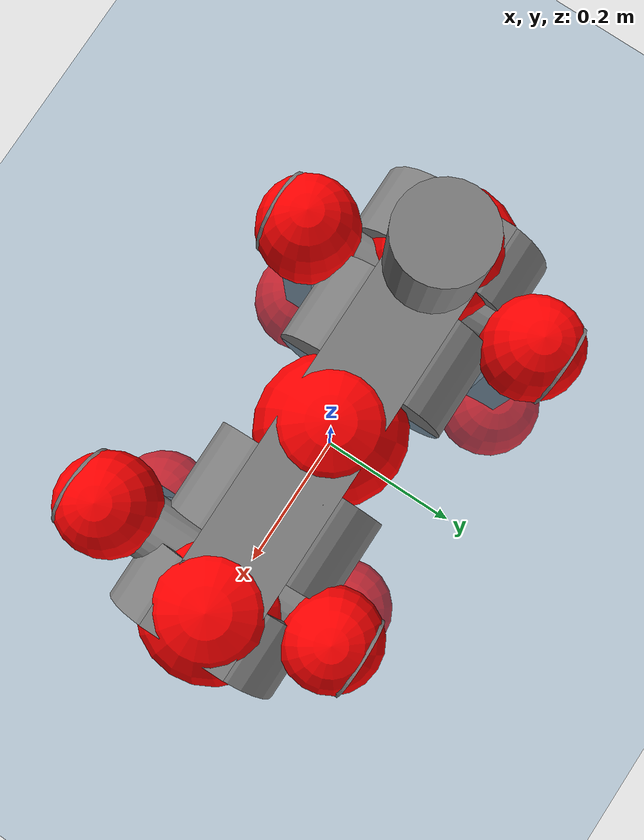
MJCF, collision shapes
<mujoco model="anymal_c">
  <compiler angle="radian" assetdir="assets" balanceinertia="true" inertiafromgeom="false"/>

  <option timestep="0.005" density="1.2" viscosity="2e-05"/>

  <size nkey="1"/>

  <visual>
    <quality shadowsize="8192"/>
    <map shadowclip="0.5"/>
  </visual>

  <default>
    <default class="/">
      <material specular="0" shininess="0.25"/>
      <geom contype="0" conaffinity="0" group="1" solref="-1000 -80"/>
      <site size="0.01 0.005 0.005" group="5"/>
      <general forcelimited="true" forcerange="-80 80" biastype="affine" gainprm="80" biasprm="0 -80 -2"/>
      <default class="anymal_c">
        <joint armature="0.01" damping="0.01" frictionloss="0.1"/>
        <default class="visual">
          <geom type="mesh" group="2"/>
          <default class="visual_zflip"/>
        </default>
        <default class="collision">
          <geom type="cylinder" group="3"/>
          <default class="foot">
            <geom size="0.03 0 0" type="sphere" condim="6" priority="1" friction="0.8 0.02 0.01" solimp="0.015 1 0.03"/>
          </default>
        </default>
      </default>
      <default class="reward_collision_sphere">
        <geom group="5" rgba="1 0 0 1"/>
      </default>
    </default>
  </default>

  <asset>
    <texture type="skybox" colorspace="auto" name="//unnamed_texture_0" builtin="gradient" rgb1="0.95 0.95 0.95" rgb2="0.95 0.95 0.95" width="100" height="600"/>
    <texture type="2d" colorspace="auto" name="texplane" builtin="checker" rgb1="0.345 0.575 0.748" rgb2="0.345 0.575 0.748" markrgb="1 1 1" width="512" height="512"/>
    <texture type="2d" colorspace="linear" name="base" file="base.png"/>
    <texture type="2d" colorspace="linear" name="top_shell" file="top_shell.png"/>
    <texture type="2d" colorspace="linear" name="bottom_shell" file="bottom_shell.png"/>
    <texture type="2d" colorspace="linear" name="remote" file="remote.png"/>
    <texture type="2d" colorspace="linear" name="hatch" file="hatch.png"/>
    <texture type="2d" colorspace="linear" name="handle" file="handle.png"/>
    <texture type="2d" colorspace="linear" name="face" file="face.png"/>
    <texture type="2d" colorspace="linear" name="battery" file="battery.png"/>
    <texture type="2d" colorspace="linear" name="lidar_cage" file="lidar_cage.png"/>
    <texture type="2d" colorspace="linear" name="depth_camera" file="depth_camera.png"/>
    <texture type="2d" colorspace="linear" name="wide_angle_camera" file="wide_angle_camera.png"/>
    <texture type="2d" colorspace="linear" name="lidar" file="lidar.png"/>
    <texture type="2d" colorspace="linear" name="drive" file="drive.png"/>
    <texture type="2d" colorspace="linear" name="hip_l" file="hip_l.png"/>
    <texture type="2d" colorspace="linear" name="shank_l" file="shank_l.png"/>
    <texture type="2d" colorspace="linear" name="foot" file="foot.png"/>
    <texture type="2d" colorspace="linear" name="thigh" file="thigh.png"/>
    <texture type="2d" colorspace="linear" name="shank_r" file="shank_r.png"/>
    <texture type="2d" colorspace="linear" name="hip_r" file="hip_r.png"/>
    <material name="MatPlane" class="/" texture="texplane" texuniform="true" texrepeat="2 2" specular="0.9" shininess="0.5"/>
    <material name="black_plastic" class="/" rgba="0.007 0.007 0.007 1"/>
    <material name="green" class="/" rgba="0.052 0.178 0.033 1"/>
    <material name="red" class="/" rgba="0.178 0.006 0.005 1"/>
    <material name="yellow" class="/" rgba="0.178 0.119 0.006 1"/>
    <material name="lwl" class="/" rgba="0.8 0.8 0.8 1"/>
    <material name="base" class="/" texture="base"/>
    <material name="top_shell" class="/" texture="top_shell"/>
    <material name="bottom_shell" class="/" texture="bottom_shell"/>
    <material name="hip_l" class="/" texture="hip_l"/>
    <material name="thigh" class="/" texture="thigh"/>
    <material name="shank_l" class="/" texture="shank_l"/>
    <material name="foot" class="/" texture="foot"/>
    <material name="hip_r" class="/" texture="hip_r"/>
    <material name="shank" class="/" texture="shank_r"/>
    <material name="hatch" class="/" texture="hatch"/>
    <material name="remote" class="/" texture="remote"/>
    <material name="handle" class="/" texture="handle"/>
    <material name="face" class="/" texture="face"/>
    <material name="depth_camera" class="/" texture="depth_camera"/>
    <material name="wide_angle_camera" class="/" texture="wide_angle_camera"/>
    <material name="battery" class="/" texture="battery"/>
    <material name="lidar_cage" class="/" texture="lidar_cage"/>
    <material name="lidar" class="/" texture="lidar"/>
    <material name="drive" class="/" texture="drive"/>
    <mesh name="base_0" class="/" file="base_0.obj"/>
    <mesh name="base_1" class="/" file="base_1.obj"/>
    <mesh name="base_2" class="/" file="base_2.obj"/>
    <mesh name="base_3" class="/" file="base_3.obj"/>
    <mesh name="base_4" class="/" file="base_4.obj"/>
    <mesh name="base_5" class="/" file="base_5.obj"/>
    <mesh name="top_shell" class="/" file="top_shell.obj"/>
    <mesh name="bottom_shell" class="/" file="bottom_shell.obj"/>
    <mesh name="remote" class="/" file="remote.obj"/>
    <mesh name="handle" class="/" file="handle.obj"/>
    <mesh name="face" class="/" file="face.obj"/>
    <mesh name="wide_angle_camera" class="/" file="wide_angle_camera.obj"/>
    <mesh name="depth_camera" class="/" file="depth_camera.obj"/>
    <mesh name="battery" class="/" file="battery.obj"/>
    <mesh name="lidar_cage" class="/" file="lidar_cage.obj"/>
    <mesh name="lidar" class="/" file="lidar.obj"/>
    <mesh name="drive" class="/" file="drive.obj"/>
    <mesh name="hip_l" class="/" file="hip_l.obj"/>
    <mesh name="thigh" class="/" file="thigh.obj"/>
    <mesh name="shank_l" class="/" file="shank_l.obj"/>
    <mesh name="foot" class="/" file="foot.obj"/>
    <mesh name="hip_r" class="/" file="hip_r.obj"/>
    <mesh name="hatch" class="/" file="hatch.obj"/>
    <mesh name="shank_r" class="/" file="shank_r.obj"/>
  </asset>

  <worldbody>
    <geom name="floor" class="/" size="100 100 0.125" type="plane" group="0" material="MatPlane"/>
    <light name="toplight_shadow" class="/" pos="0 0 5" dir="0.0990148 0.0990148 -0.990148" type="directional" ambient="0.04 0.04 0.04" diffuse="0.55 0.55 0.55" specular="0.12 0.12 0.12"/>
    <light name="toplight_fill" class="/" pos="0 0 5" dir="0.0990148 0.0990148 -0.990148" type="directional" castshadow="false" ambient="0.04 0.04 0.04" diffuse="0.3 0.3 0.3" specular="0.08 0.08 0.08"/>
    <body name="trunk" childclass="anymal_c" pos="-0.0155554 -0.00880286 0.00383017" quat="0.999994 -0.000170407 0.00175678 0.00285426">
      <inertial pos="0.000186399 0.0038109 0.0726016" quat="0.457903 0.508755 0.499227 0.531287" mass="16.0668" diaginertia="0.0521932 0.0828841 1.3884"/>
      <joint name="//unnamed_joint_0" type="free" armature="0" damping="0" frictionloss="0"/>
      <geom name="//unnamed_geom_1" class="visual" material="green" mesh="base_0"/>
      <geom name="//unnamed_geom_2" class="visual" material="yellow" mesh="base_1"/>
      <geom name="//unnamed_geom_3" class="visual" material="red" mesh="base_2"/>
      <geom name="//unnamed_geom_4" class="visual" material="black_plastic" mesh="base_3"/>
      <geom name="//unnamed_geom_5" class="visual" material="lwl" mesh="base_4"/>
      <geom name="//unnamed_geom_6" class="visual" material="base" mesh="base_5"/>
      <geom name="trunk_1" class="collision" size="0.27443 0.0662416 0.0851678" type="box"/>
      <geom name="trunk_2" class="collision" size="0.0851678 0.0686074" pos="0.143241 0.050231 0" quat="0.707107 0 0.707107 0"/>
      <geom name="trunk_3" class="collision" size="0.0851678 0.0686074" pos="-0.143241 0.050231 0" quat="0.707107 0 0.707107 0"/>
      <geom name="trunk_4" class="collision" size="0.0851678 0.0686074" pos="0.143241 -0.050231 0" quat="0.707107 0 0.707107 0"/>
      <geom name="trunk_5" class="collision" size="0.0851678 0.0686074" pos="-0.143241 -0.050231 0" quat="0.707107 0 0.707107 0"/>
      <geom name="//unnamed_geom_12" class="visual" material="top_shell" mesh="top_shell"/>
      <geom name="//unnamed_geom_13" class="visual" material="bottom_shell" mesh="bottom_shell"/>
      <geom name="//unnamed_geom_14" class="visual" material="remote" mesh="remote"/>
      <geom name="//unnamed_geom_15" class="visual" material="handle" mesh="handle"/>
      <geom name="//unnamed_geom_16" class="visual" pos="0.272981 0 0" quat="1 0 0 0" material="face" mesh="face"/>
      <geom name="trunk_6" class="collision" size="0.052047 0.0662416 0.0851678" pos="0.309203 0 0" type="box"/>
      <geom name="//unnamed_geom_18" class="collision" size="0.0851678 0.052047" pos="0.309203 0.050231 0" quat="0.707107 0 0.707107 0"/>
      <geom name="//unnamed_geom_19" class="collision" size="0.0851678 0.052047" pos="0.309203 -0.050231 0" quat="0.707107 0 0.707107 0"/>
      <geom name="//unnamed_geom_20" class="visual" pos="0.304066 0 -0.0488244" quat="0.965926 0 0.258819 0" material="depth_camera" mesh="depth_camera"/>
      <geom name="//unnamed_geom_21" class="visual" pos="0.337851 0 0.0218975" material="wide_angle_camera" mesh="wide_angle_camera"/>
      <geom name="//unnamed_geom_22" class="visual_zflip" pos="-0.272981 0 0" quat="0 0 0 1" material="face" mesh="face"/>
      <geom name="trunk_7" class="collision" size="0.052047 0.0662416 0.0851678" pos="-0.309203 0 0" quat="0 0 0 1" type="box"/>
      <geom name="//unnamed_geom_24" class="collision" size="0.0851678 0.052047" pos="-0.309203 -0.050231 0" quat="0 -0.707107 0 0.707107"/>
      <geom name="//unnamed_geom_25" class="collision" size="0.0851678 0.052047" pos="-0.309203 0.050231 0" quat="0 -0.707107 0 0.707107"/>
      <geom name="//unnamed_geom_26" class="visual" pos="-0.304066 0 -0.0488244" quat="0 -0.258819 0 0.965926" material="depth_camera" mesh="depth_camera"/>
      <geom name="//unnamed_geom_27" class="visual_zflip" pos="-0.337851 0 0.0218975" quat="0 0 0 1" material="wide_angle_camera" mesh="wide_angle_camera"/>
      <geom name="//unnamed_geom_28" class="visual" material="battery" mesh="battery"/>
      <geom name="//unnamed_geom_29" class="visual" pos="0 0.0556743 0.0363814" quat="0.683013 -0.183013 0.183013 0.683013" material="depth_camera" mesh="depth_camera"/>
      <geom name="//unnamed_geom_30" class="visual" pos="0 -0.0556743 0.0363814" quat="0.683013 0.183013 0.183013 -0.683013" material="depth_camera" mesh="depth_camera"/>
      <geom name="//unnamed_geom_31" class="visual" pos="-0.239723 0 0.107513" quat="1 0 0 0" material="lidar_cage" mesh="lidar_cage"/>
      <geom name="trunk_8" class="collision" size="0.0662416 0.0567785" pos="-0.239723 0 0.195279"/>
      <geom name="//unnamed_geom_33" class="visual" pos="-0.239723 2.3182e-05 0.208005" quat="0.707107 0 0 -0.707107" material="lidar" mesh="lidar"/>
      <geom name="//unnamed_geom_34" class="visual" pos="0.197508 0.0748936 -1.28544e-08" quat="0.258819 0.965926 0 0" material="drive" mesh="drive"/>
      <geom name="//unnamed_geom_35" class="visual" pos="0.197508 -0.0748936 1.28544e-08" quat="0.258819 -0.965926 0 0" material="drive" mesh="drive"/>
      <geom name="//unnamed_geom_36" class="visual" pos="-0.197508 0.0748936 1.28544e-08" quat="0 0 0.965926 -0.258819" material="drive" mesh="drive"/>
      <geom name="//unnamed_geom_37" class="visual" pos="-0.197508 -0.0748936 -1.28544e-08" quat="0 0 -0.965926 -0.258819" material="drive" mesh="drive"/>
      <geom name="//unnamed_geom_38" class="visual" pos="0.0763952 0 0.106782" quat="1 0 0 0" material="hatch" mesh="hatch"/>
      <geom name="//unnamed_geom_39" class="reward_collision_sphere" size="0.113557"/>
      <geom name="//unnamed_geom_40" class="reward_collision_sphere" size="0.113557" pos="0.296361 0 0"/>
      <geom name="//unnamed_geom_41" class="reward_collision_sphere" size="0.113557" pos="-0.296361 0 0"/>
      <site name="imu" pos="0.127938 0.0312126 0.153039" size="0.00946309"/>
      <camera name="track" pos="0 -1.43517 0" quat="0.707107 0.707107 0 0" mode="trackcom"/>
      <camera name="ego_camera" pos="0.296361 0 -0.0585105" quat="-0.5 -0.5 0.5 0.5"/>
      <body name="LF_HIP" pos="0.193933 0.073493 0.0111834" quat="0.25398 0.967195 0.000120589 0.00535336">
        <inertial pos="0.0538092 -0.00195888 -0.0101591" quat="-0.122705 0.709005 -0.140657 0.680052" mass="2.63842" diaginertia="0.000811195 0.00112843 0.0242309"/>
        <joint name="LF_HAA" pos="0 0 0" axis="0.995752 -0.010051 -0.091521" stiffness="0.0785155" range="-0.641675 0.504173" armature="0.0169411" damping="0" frictionloss="0.0470004"/>
        <geom name="//unnamed_geom_42" class="visual" pos="0 -0.000756164 0.000124199" quat="0.258819 -0.965926 0 0" material="hip_l" mesh="hip_l"/>
        <geom name="//unnamed_geom_43" class="visual" pos="0.0394489 -0.0488424 -0.0337109" quat="0.183013 -0.683013 0.683013 0.183013" material="drive" mesh="drive"/>
        <geom name="//unnamed_geom_44" class="collision" size="0.0473154 0.0662416" pos="0.0394489 -0.00858218 -0.0101004" quat="-0.353553 -0.612372 0.612372 -0.353553"/>
        <body name="LF_THIGH" pos="0.0514101 -0.051212 -0.050599" quat="0.182066 -0.684468 0.680796 0.186745">
          <inertial pos="0.0239848 -0.000704566 -0.341804" quat="0.996661 -0.0179041 -0.0350708 0.0715334" mass="2.74777" diaginertia="0.00398781 0.0062405 0.0319327"/>
          <joint name="LF_HFE" pos="0 0 0" axis="0.998604 0.0451567 0.027413" stiffness="0.0583317" range="-3.32516 3.14108" armature="0.00191878" damping="0.0574038" frictionloss="0.147278"/>
          <geom name="//unnamed_geom_45" class="visual" pos="-0.001174 -1.84994e-06 0" quat="0.707107 0 0 -0.707107" material="thigh" mesh="thigh"/>
          <geom name="//unnamed_geom_46" class="collision" size="0.0615101 0.0378523" pos="0.0263432 0 0" quat="0.5 0.5 -0.5 -0.5"/>
          <geom name="//unnamed_geom_47" class="collision" size="0.0354866 0.0283893 0.133727" pos="0.0197574 0 -0.206709" quat="0.707107 0 0 -0.707107" type="box"/>
          <geom name="//unnamed_geom_48" class="visual" pos="0.0660555 0 -0.416887" quat="1 0 0 0" material="drive" mesh="drive"/>
          <geom name="//unnamed_geom_49" class="collision" size="0.0473154 0.0662416" pos="0.0199549 0 -0.416887" quat="0.707107 0 0.707107 0"/>
          <geom name="//unnamed_geom_50" class="reward_collision_sphere" size="0.0757047" pos="0.0164645 0 0"/>
          <body name="LF_SHANK" pos="0.0632957 0.0179793 -0.413681" quat="0.999979 0.00429223 -0.00347659 -0.0033035">
            <inertial pos="-0.0063378 -0.037393 -0.116782" quat="0.985032 -0.160526 -0.0626276 0.00468238" mass="0.365617" diaginertia="0.00126021 0.00147774 0.00759831"/>
            <joint name="LF_KFE" pos="0 0 0" axis="0.999177 0.0111364 -0.0389961" range="-3.18044 3.24732" armature="0.00790084" damping="0.0663978" frictionloss="0.0742821"/>
            <geom name="//unnamed_geom_51" class="visual" pos="-0.000382814 -0.00204119 0" quat="0.707107 0 0 -0.707107" material="shank_l" mesh="shank_l"/>
            <geom name="LF_kfe_act" class="collision" size="0.0567785 0.0189262" pos="0.0131716 0 0" quat="0.5 0.5 -0.5 -0.5"/>
            <geom name="//unnamed_geom_53" class="collision" size="0.0544118 0.0319379 0.0179799" pos="0.0131716 -0.0412605 0" quat="0.5 0.5 -0.5 -0.5" type="box"/>
            <geom name="//unnamed_geom_54" class="visual" pos="0.00859455 -0.0637694 -0.494369" quat="0.382683 0 0 -0.92388" material="foot" mesh="foot"/>
            <geom name="LF_calf" class="collision" size="0.0165604 0.133668" pos="0.00859446 -0.0631117 -0.247185" quat="0.707107 0 0 -0.707107"/>
            <geom name="LF_foot" class="foot" size="0.014699" pos="0.00859446 -0.0631117 -0.461457" quat="0.707107 0 0 -0.707107"/>
            <geom name="//unnamed_geom_57" class="reward_collision_sphere" size="0.0946309" pos="-0.032929 0 0"/>
            <geom name="//unnamed_geom_58" class="reward_collision_sphere" size="0.0473154" pos="0.00859446 -0.0631117 -0.461457"/>
            <site name="LF_foot" class="foot" pos="0.00859446 -0.0631117 -0.461457" quat="0.707107 0 0 -0.707107" size="0.00946309"/>
          </body>
        </body>
      </body>
      <body name="RF_HIP" pos="0.215216 -0.0918694 0.0143077" quat="0.25803 -0.966136 4.69528e-05 -0.00147649">
        <inertial pos="0.0200636 0.00382075 0.00394892" quat="0.150588 0.715782 0.134971 0.668403" mass="1.74181" diaginertia="0.000598964 0.000852245 0.0176114"/>
        <joint name="RF_HAA" pos="0 0 0" axis="0.997065 0.0657002 -0.03931" range="-0.163866 0.622634" armature="0.0094436" damping="0" frictionloss="0.163725"/>
        <geom name="//unnamed_geom_59" class="visual" pos="0 0.000756158 0.000124199" quat="0.258819 0.965926 0 0" material="hip_r" mesh="hip_r"/>
        <geom name="//unnamed_geom_60" class="visual" pos="0.0394489 0.0488424 -0.0337109" quat="0.183013 0.683013 0.683013 -0.183013" material="drive" mesh="drive"/>
        <geom name="//unnamed_geom_61" class="collision" size="0.0473154 0.0662416" pos="0.0394489 0.00858218 -0.0101004" quat="-0.353553 0.612372 0.612372 0.353553"/>
        <body name="RF_THIGH" pos="0.040824 0.0596291 -0.0725932" quat="0.183566 0.683156 0.682896 -0.182358">
          <inertial pos="0.0306765 -0.0184534 -0.36653" quat="0.992662 -0.0074459 -0.0791876 0.0910863" mass="2.32583" diaginertia="0.00365552 0.00477089 0.0251927"/>
          <joint name="RF_HFE" pos="0 0 0" axis="0.999163 -0.0350844 -0.0210437" range="-3.04388 2.93513" armature="0.013277" damping="0.0682727" frictionloss="0.0665155"/>
          <geom name="//unnamed_geom_62" class="visual" pos="-0.001174 -1.84994e-06 0" quat="0.707107 0 0 -0.707107" material="thigh" mesh="thigh"/>
          <geom name="//unnamed_geom_63" class="collision" size="0.0615101 0.0378523" pos="0.0263432 0 0" quat="0.5 0.5 0.5 0.5"/>
          <geom name="//unnamed_geom_64" class="collision" size="0.0354866 0.0283893 0.133727" pos="0.0197574 0 -0.206709" quat="0.707107 0 0 0.707107" type="box"/>
          <geom name="//unnamed_geom_65" class="visual" pos="0.0660555 0 -0.416887" quat="1 0 0 0" material="drive" mesh="drive"/>
          <geom name="//unnamed_geom_66" class="collision" size="0.0473154 0.0662416" pos="0.0199549 0 -0.416887" quat="0.707107 0 0.707107 0"/>
          <geom name="//unnamed_geom_67" class="reward_collision_sphere" size="0.0757047" pos="0.0164645 0 0"/>
          <body name="RF_SHANK" pos="0.0670031 -0.00742889 -0.431668" quat="0.999962 -0.00176694 8.18521e-05 0.00852898">
            <inertial pos="-0.0150106 0.0560528 -0.132571" quat="0.994482 0.104573 -0.00835978 0.000110793" mass="0.629006" diaginertia="0.00116886 0.00152342 0.00624805"/>
            <joint name="RF_KFE" pos="0 0 0" axis="0.99928 -0.00973754 -0.0366757" range="-2.80808 3.21415" armature="0.00681201" damping="0" frictionloss="0.0221216"/>
            <geom name="//unnamed_geom_68" class="visual" pos="-0.000382812 0.00204118 0" quat="0.707107 0 0 0.707107" material="shank" mesh="shank_r"/>
            <geom name="RF_kfe_act" class="collision" size="0.0567785 0.0189262" pos="0.0131716 0 0" quat="0.5 0.5 0.5 0.5"/>
            <geom name="//unnamed_geom_70" class="collision" size="0.0544118 0.0319379 0.0179799" pos="0.0131716 0.0412605 0" quat="0.5 0.5 0.5 0.5" type="box"/>
            <geom name="//unnamed_geom_71" class="visual" pos="0.00859437 0.0637694 -0.494369" quat="0.382683 0 0 0.92388" material="foot" mesh="foot"/>
            <geom name="RF_calf" class="collision" size="0.0165604 0.133668" pos="0.00859446 0.0631117 -0.247185" quat="0.707107 0 0 0.707107"/>
            <geom name="RF_foot" class="foot" size="0.0291633" pos="0.00859446 0.0631117 -0.461457" quat="0.707107 0 0 0.707107"/>
            <geom name="//unnamed_geom_74" class="reward_collision_sphere" size="0.0946309" pos="-0.032929 0 0"/>
            <geom name="//unnamed_geom_75" class="reward_collision_sphere" size="0.0473154" pos="0.00859446 0.0631117 -0.461457"/>
            <site name="RF_foot" class="foot" pos="0.00859446 0.0631117 -0.461457" quat="0.707107 0 0 0.707107" size="0.00946309"/>
          </body>
        </body>
      </body>
      <body name="LH_HIP" pos="-0.21638 0.0899025 0.00583618" quat="0.00106841 -0.00291781 0.966444 -0.256859">
        <inertial pos="0.0206813 0.0292501 -0.013303" quat="0.198595 0.684862 0.089807 0.695312" mass="2.70134" diaginertia="0.00080486 0.000944809 0.0266308"/>
        <joint name="LH_HAA" pos="0 0 0" axis="0.998871 0.00993 -0.046448" range="-0.743002 0.545641" armature="0.00962748" damping="0.0109649" frictionloss="0.133408"/>
        <geom name="//unnamed_geom_76" class="visual" pos="0 0.000756158 0.000124199" quat="-0.258819 -0.965926 0 0" material="hip_r" mesh="hip_r"/>
        <geom name="//unnamed_geom_77" class="visual" pos="0.0394489 0.0488424 -0.0337109" quat="0.183013 0.683013 0.683013 -0.183013" material="drive" mesh="drive"/>
        <geom name="//unnamed_geom_78" class="collision" size="0.0473154 0.0662416" pos="0.0394489 0.00858218 -0.0101004" quat="-0.353553 0.612372 0.612372 0.353553"/>
        <body name="LH_THIGH" pos="0.0286498 0.0433962 -0.0616733" quat="0.17887 0.683124 0.683834 -0.183626">
          <inertial pos="0.0140296 -0.0170061 -0.362811" quat="0.983569 0.0213881 -0.102431 0.147116" mass="2.00867" diaginertia="0.00362575 0.00454955 0.0287352"/>
          <joint name="LH_HFE" pos="0 0 0" axis="0.996818 0.0353224 -0.071455" stiffness="0.0650961" range="-3.39268 2.90331" armature="0.0022134" damping="0" frictionloss="0.0251068"/>
          <geom name="//unnamed_geom_79" class="visual" pos="-0.001174 -1.84994e-06 0" quat="0.707107 0 0 -0.707107" material="thigh" mesh="thigh"/>
          <geom name="//unnamed_geom_80" class="collision" size="0.0615101 0.0378523" pos="0.0263432 0 0" quat="0.5 0.5 -0.5 -0.5"/>
          <geom name="//unnamed_geom_81" class="collision" size="0.0354866 0.0283893 0.133727" pos="0.0197574 0 -0.206709" quat="0.707107 0 0 -0.707107" type="box"/>
          <geom name="//unnamed_geom_82" class="visual" pos="0.0660555 0 -0.416887" quat="1 0 0 0" material="drive" mesh="drive"/>
          <geom name="//unnamed_geom_83" class="collision" size="0.0473154 0.0662416" pos="0.0199549 0 -0.416887" quat="0.707107 0 0.707107 0"/>
          <geom name="//unnamed_geom_84" class="reward_collision_sphere" size="0.0757047" pos="0.0164645 0 0"/>
          <body name="LH_SHANK" pos="0.077787 -0.014295 -0.399176" quat="0.99996 -0.00744135 -0.00334682 -0.00368826">
            <inertial pos="-0.000761285 0.0438934 -0.136715" quat="0.997747 0.0655775 0.00942821 0.0105203" mass="0.585499" diaginertia="0.00127384 0.00192777 0.007088"/>
            <joint name="LH_KFE" pos="0 0 0" axis="0.99903 -0.0424865 -0.0115429" stiffness="0.0487624" range="-3.27456 3.37846" armature="0.0065177" damping="0.00017519" frictionloss="0.15996"/>
            <geom name="//unnamed_geom_85" class="visual" pos="-0.000382812 0.00204118 0" quat="-0.707107 0 0 -0.707107" material="shank" mesh="shank_r"/>
            <geom name="LH_kfe_act" class="collision" size="0.0567785 0.0189262" pos="0.0131716 0 0" quat="0.5 0.5 -0.5 -0.5"/>
            <geom name="//unnamed_geom_87" class="collision" size="0.0544118 0.0319379 0.0179799" pos="0.0131716 0.0412605 0" quat="0.5 0.5 -0.5 -0.5" type="box"/>
            <geom name="//unnamed_geom_88" class="visual" pos="0.00859437 0.0637694 -0.494369" quat="-0.382683 0 0 -0.92388" material="foot" mesh="foot"/>
            <geom name="LH_calf" class="collision" size="0.0165604 0.133668" pos="0.00859446 0.0631117 -0.247185" quat="0.707107 0 0 -0.707107"/>
            <geom name="LH_foot" class="foot" size="0.0435992" pos="0.00859446 0.0631117 -0.461457" quat="0.707107 0 0 -0.707107"/>
            <geom name="//unnamed_geom_91" class="reward_collision_sphere" size="0.0946309" pos="-0.032929 0 0"/>
            <geom name="//unnamed_geom_92" class="reward_collision_sphere" size="0.0473154" pos="0.00859446 0.0631117 -0.461457"/>
            <site name="LH_foot" class="foot" pos="0.00859446 0.0631117 -0.461457" quat="0.707107 0 0 -0.707107" size="0.00946309"/>
          </body>
        </body>
      </body>
      <body name="RH_HIP" pos="-0.180751 -0.0838425 0.00463128" quat="0.00273943 0.000259754 -0.96672 -0.255822">
        <inertial pos="0.024234 -0.0215793 -0.0135176" quat="-0.198319 0.691392 -0.177503 0.671669" mass="2.52154" diaginertia="0.000669554 0.000851269 0.020157"/>
        <joint name="RH_HAA" pos="0 0 0" axis="0.996256 0.0516026 0.069359" stiffness="0.0274398" range="-0.734353 0.331736" armature="0.0140301" damping="0" frictionloss="0.0826871"/>
        <geom name="//unnamed_geom_93" class="visual" pos="0 -0.000756164 0.000124199" quat="-0.258819 0.965926 0 0" material="hip_l" mesh="hip_l"/>
        <geom name="//unnamed_geom_94" class="visual" pos="0.0394489 -0.0488424 -0.0337109" quat="-0.183013 0.683013 -0.683013 -0.183013" material="drive" mesh="drive"/>
        <geom name="//unnamed_geom_95" class="collision" size="0.0473154 0.0662416" pos="0.0394489 -0.00858218 -0.0101004" quat="0.353553 0.612372 -0.612372 0.353553"/>
        <body name="RH_THIGH" pos="0.0348528 -0.0451906 -0.0768204" quat="-0.183454 0.680099 -0.686032 -0.182129">
          <inertial pos="0.013386 0.00356648 -0.366977" quat="0.992179 0.071214 -0.0951161 0.0382453" mass="2.74834" diaginertia="0.00379367 0.0045358 0.021082"/>
          <joint name="RH_HFE" pos="0 0 0" axis="0.99939 -0.0237203 0.0256161" stiffness="0.0644382" range="-3.18474 2.97392" armature="0.00326648" damping="0.078298" frictionloss="0.142921"/>
          <geom name="//unnamed_geom_96" class="visual" pos="-0.001174 -1.84994e-06 0" quat="0.707107 0 0 -0.707107" material="thigh" mesh="thigh"/>
          <geom name="//unnamed_geom_97" class="collision" size="0.0615101 0.0378523" pos="0.0263432 0 0" quat="0.5 0.5 0.5 0.5"/>
          <geom name="//unnamed_geom_98" class="collision" size="0.0354866 0.0283893 0.133727" pos="0.0197574 0 -0.206709" quat="0.707107 0 0 0.707107" type="box"/>
          <geom name="//unnamed_geom_99" class="visual" pos="0.0660555 0 -0.416887" quat="1 0 0 0" material="drive" mesh="drive"/>
          <geom name="//unnamed_geom_100" class="collision" size="0.0473154 0.0662416" pos="0.0199549 0 -0.416887" quat="0.707107 0 0.707107 0"/>
          <geom name="//unnamed_geom_101" class="reward_collision_sphere" size="0.0757047" pos="0.0164645 0 0"/>
          <body name="RH_SHANK" pos="0.0658541 0.00253964 -0.412828" quat="0.999999 -0.000182422 0.000636369 -0.000813971">
            <inertial pos="0.0189825 -0.0264793 -0.134609" quat="0.991047 -0.128832 0.00752216 -0.0342205" mass="0.428953" diaginertia="0.00153171 0.0015049 0.00780453"/>
            <joint name="RH_KFE" pos="0 0 0" axis="0.999266 -0.034274 0.0170892" stiffness="0.0268228" range="-2.97305 2.80702" armature="0.00924153" damping="0" frictionloss="0.0146845"/>
            <geom name="//unnamed_geom_102" class="visual" pos="-0.000382814 -0.00204119 0" quat="0.707107 0 0 -0.707107" material="shank_l" mesh="shank_l"/>
            <geom name="RH_kfe_act" class="collision" size="0.0567785 0.0189262" pos="0.0131716 0 0" quat="0.5 0.5 0.5 0.5"/>
            <geom name="//unnamed_geom_104" class="collision" size="0.0544118 0.0319379 0.0179799" pos="0.0131716 -0.0412605 0" quat="0.5 0.5 0.5 0.5" type="box"/>
            <geom name="//unnamed_geom_105" class="visual" pos="0.00859455 -0.0637694 -0.494369" quat="0.382683 0 0 -0.92388" material="foot" mesh="foot"/>
            <geom name="RH_calf" class="collision" size="0.0165604 0.133668" pos="0.00859446 -0.0631117 -0.247185" quat="0.707107 0 0 0.707107"/>
            <geom name="RH_foot" class="foot" size="0.0109598" pos="0.00859446 -0.0631117 -0.461457" quat="0.707107 0 0 0.707107"/>
            <geom name="//unnamed_geom_108" class="reward_collision_sphere" size="0.0946309" pos="-0.032929 0 0"/>
            <geom name="//unnamed_geom_109" class="reward_collision_sphere" size="0.0473154" pos="0.00859446 -0.0631117 -0.461457"/>
            <site name="RH_foot" class="foot" pos="0.00859446 -0.0631117 -0.461457" quat="0.707107 0 0 0.707107" size="0.00946309"/>
          </body>
        </body>
      </body>
    </body>
  </worldbody>

  <contact>
    <pair class="/" geom1="floor" geom2="LF_foot" name="//unnamed_contact_0"/>
    <pair class="/" geom1="floor" geom2="RF_foot" name="//unnamed_contact_1"/>
    <pair class="/" geom1="floor" geom2="LH_foot" name="//unnamed_contact_2"/>
    <pair class="/" geom1="floor" geom2="RH_foot" name="//unnamed_contact_3"/>
  </contact>

  <actuator>
    <general name="LF_HAA" class="/" joint="LF_HAA" forcerange="-77.1154 77.1154" gainprm="74.1305" biasprm="0 -74.1305 -1.52735"/>
    <general name="LF_HFE" class="/" joint="LF_HFE" forcerange="-117.327 117.327" gainprm="74.1305" biasprm="0 -74.1305 -1.52735"/>
    <general name="LF_KFE" class="/" joint="LF_KFE" forcerange="-49.4058 49.4058" gainprm="74.1305" biasprm="0 -74.1305 -1.52735"/>
    <general name="RF_HAA" class="/" joint="RF_HAA" forcerange="-74.9466 74.9466" gainprm="74.1305" biasprm="0 -74.1305 -1.52735"/>
    <general name="RF_HFE" class="/" joint="RF_HFE" forcerange="-62.0834 62.0834" gainprm="74.1305" biasprm="0 -74.1305 -1.52735"/>
    <general name="RF_KFE" class="/" joint="RF_KFE" forcerange="-43.3842 43.3842" gainprm="74.1305" biasprm="0 -74.1305 -1.52735"/>
    <general name="LH_HAA" class="/" joint="LH_HAA" forcerange="-75.5515 75.5515" gainprm="74.1305" biasprm="0 -74.1305 -1.52735"/>
    <general name="LH_HFE" class="/" joint="LH_HFE" forcerange="-42.3905 42.3905" gainprm="74.1305" biasprm="0 -74.1305 -1.52735"/>
    <general name="LH_KFE" class="/" joint="LH_KFE" forcerange="-106.82 106.82" gainprm="74.1305" biasprm="0 -74.1305 -1.52735"/>
    <general name="RH_HAA" class="/" joint="RH_HAA" forcerange="-85.9046 85.9046" gainprm="74.1305" biasprm="0 -74.1305 -1.52735"/>
    <general name="RH_HFE" class="/" joint="RH_HFE" forcerange="-53.9166 53.9166" gainprm="74.1305" biasprm="0 -74.1305 -1.52735"/>
    <general name="RH_KFE" class="/" joint="RH_KFE" forcerange="-126.59 126.59" gainprm="74.1305" biasprm="0 -74.1305 -1.52735"/>
  </actuator>

  <sensor>
    <gyro site="imu" name="imu_angular_velocity"/>
    <velocimeter site="imu" name="imu_linear_velocity"/>
    <framelinvel objtype="site" objname="LF_foot" name="LF_foot_global_linear_velocity"/>
    <framelinvel objtype="site" objname="RF_foot" name="RF_foot_global_linear_velocity"/>
    <framelinvel objtype="site" objname="LH_foot" name="LH_foot_global_linear_velocity"/>
    <framelinvel objtype="site" objname="RH_foot" name="RH_foot_global_linear_velocity"/>
  </sensor>

  <keyframe>
    <key name="home" qpos="0 0 0.55 1 0 0 0 0 0.4 -0.8 0 -0.4 0.8 0 -0.4 0.8 0 0.4 -0.8"/>
  </keyframe>
</mujoco>
